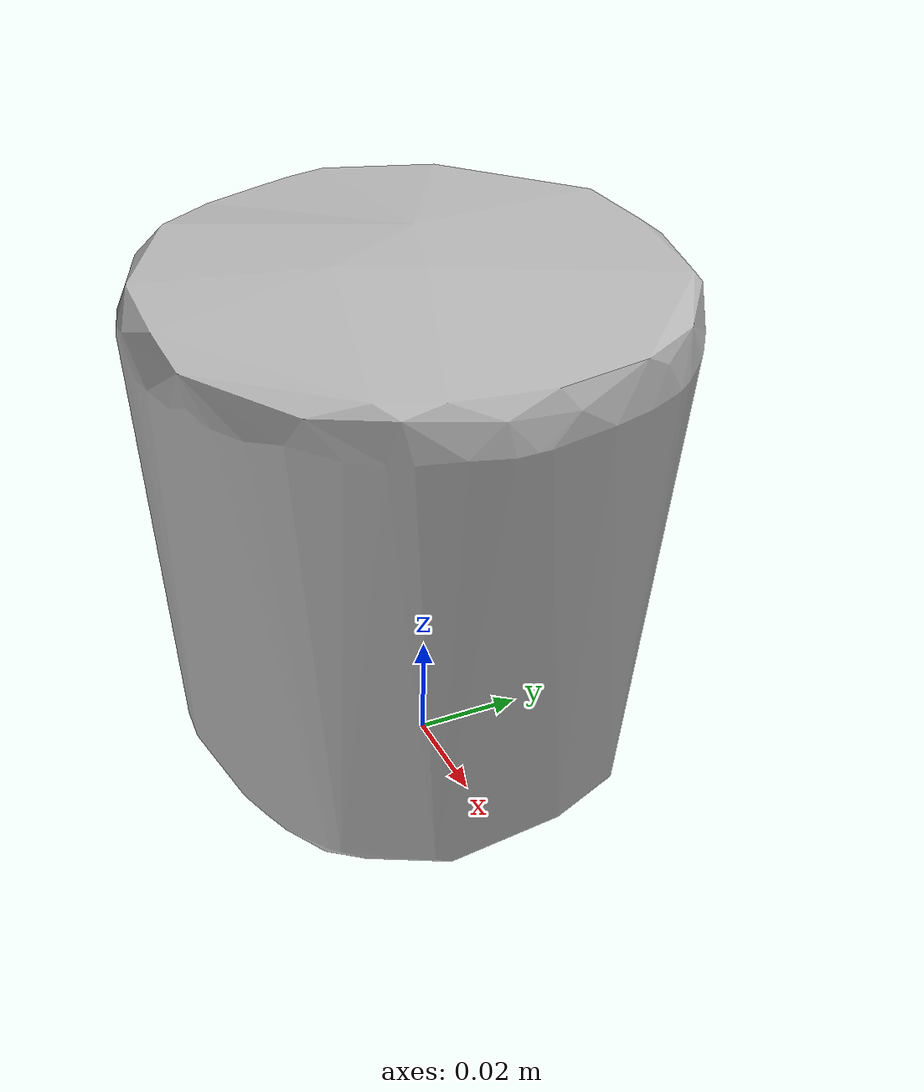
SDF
<?xml version='1.0'?>
<sdf version="1.4">
  <model name="haagen_dazs_butter_pecan">
    <static>false</static>
    <link name="link">
      <inertial>
        <pose>0.004573280526083763 -0.004501420807844326 0.05740725266480443 -3.1402461541005002 0.01387906453624184 -0.8701407834934775</pose>
        <mass>0.059883124507765846</mass>
        <inertia>
          <ixx>7.530818634200777e-05</ixx>
          <ixy>-8.015670240127828e-21</ixy>
          <ixz>-9.141382707400528e-22</ixz>
          <iyy>7.462286116929278e-05</iyy>
          <iyz>-1.170065563231206e-21</iyz>
          <izz>5.9921193315015455e-05</izz>
        </inertia>
      </inertial>
      <collision name="collision">
        <geometry>
          <mesh>
            <!-- Use a downsampled mesh for collisions -->
            <uri>model:///haagen_dazs_butter_pecan/haagen_dazs_butter_pecan_250_collision.obj</uri>
	        </mesh>
        </geometry>
        <surface>
      </surface>
      </collision>
      <visual name="visual">
        <geometry>
          <mesh>
            <uri>model:///haagen_dazs_butter_pecan/optimized_tsdf_texture_mapped_mesh.obj</uri>
	        </mesh>
        </geometry>
        <material>
          <script>
            <uri>model:///haagen_dazs_butter_pecan/haagen_dazs_butter_pecan.material</uri>
            <name>haagen_dazs_butter_pecan</name>
          </script>
        </material>
      </visual>
    </link>
  </model>
</sdf>
